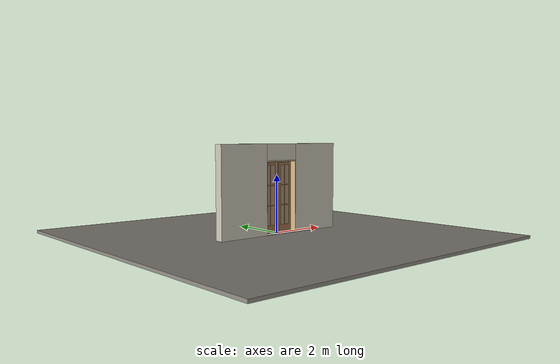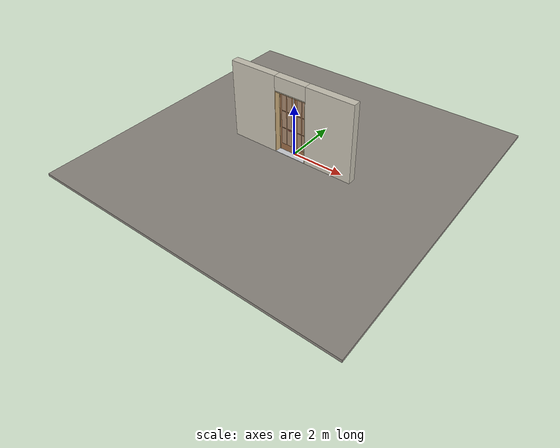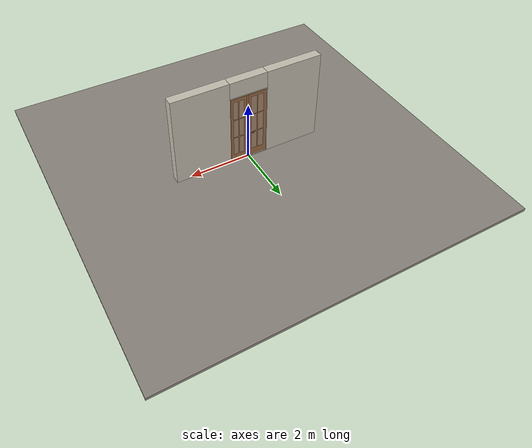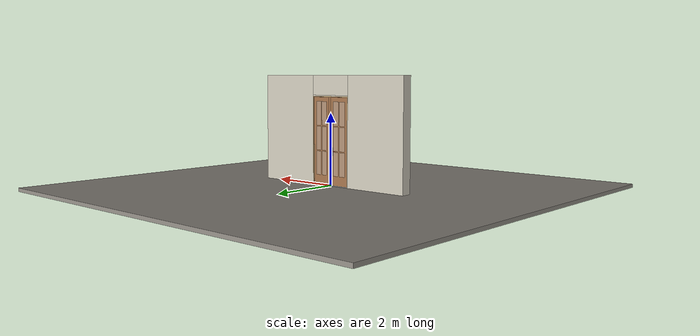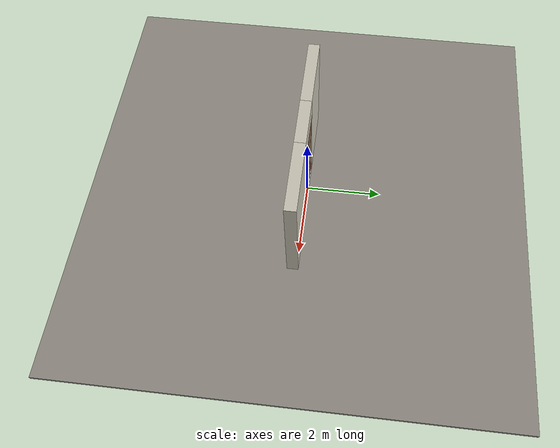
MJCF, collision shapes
<?xml version="1.0" ?>
<mujoco model="db0733_swing_double_full">
  <compiler angle="radian" meshdir="../../hardware" texturedir="../../textures" autolimits="true" inertiafromgeom="false"/>
  <option timestep="0.002" integrator="implicitfast" cone="elliptic" impratio="10" noslip_iterations="3">
    <flag multiccd="enable"/>
  </option>
  <size memory="16M"/>
  <default>
    <geom condim="4" solref="0.005 1" solimp="0.95 0.99 0.001"/>
    <joint solreflimit="0.005 1" solimplimit="0.95 0.99 0.001"/>
    <tendon solreflimit="0.005 1"/>
    <equality solref="0.002 1"/>
  </default>
  <visual>
    <headlight ambient="0.4 0.4 0.4" diffuse="0.7 0.7 0.7" specular="0.2 0.2 0.2"/>
    <quality shadowsize="4096"/>
    <map znear="0.01" zfar="60"/>
  </visual>
  <asset>
    <mesh name="cyl_face_e9e5036966" file="cyl_face_e9e5036966.obj"/>
    <mesh name="hinge_e22b26c0c1" file="hinge_e22b26c0c1.obj"/>
    <mesh name="hinge_jamb_e1d088f8dc" file="hinge_jamb_e1d088f8dc.obj"/>
    <mesh name="lever_f913fc5b7b" file="lever_f913fc5b7b.obj"/>
    <material name="mat_floor" rgba="0.55 0.53 0.5 1" specular="0.2" shininess="0.15" reflectance="0"/>
    <material name="mat_wall" rgba="0.78 0.76 0.7 1" specular="0.2" shininess="0.1" reflectance="0"/>
    <material name="mat_leaf_a" rgba="0.608 0.423 0.277 1" specular="0.2" shininess="0.45" reflectance="0"/>
    <material name="mat_glass" rgba="0.85 0.92 0.95 0.25" specular="0.2" shininess="0.95" reflectance="0.1"/>
    <material name="mat_hinge" rgba="0.65 0.66 0.68 1" specular="0.74" shininess="0.5" reflectance="0.36"/>
    <material name="mat_op_stainless" rgba="0.75 0.76 0.77 1" specular="0.8" shininess="0.65" reflectance="0.4"/>
    <material name="mat_trim" rgba="0.85 0.66 0.3 1" specular="0.8" shininess="0.75" reflectance="0.4"/>
    <material name="mat_bolt" rgba="0.85 0.66 0.3 1" specular="0.8" shininess="0.75" reflectance="0.4"/>
    <material name="mat_deadbolt" rgba="0.85 0.66 0.3 1" specular="0.8" shininess="0.75" reflectance="0.4"/>
    <material name="mat_leaf_b" rgba="0.608 0.423 0.277 1" specular="0.2" shininess="0.45" reflectance="0"/>
    <material name="mat_frame" rgba="0.82 0.7 0.5 1" specular="0.2" shininess="0.45" reflectance="0"/>
    <material name="mat_threshold" rgba="0.8 0.81 0.83 1" specular="0.8" shininess="0.6" reflectance="0.4"/>
    <material name="mat_astragal" rgba="0.8 0.81 0.83 1" specular="0.8" shininess="0.6" reflectance="0.4"/>
    <texture name="skybox" type="skybox" builtin="gradient" rgb1="0.6 0.7 0.85" rgb2="0.9 0.92 0.95" width="256" height="256"/>
  </asset>
  <worldbody>
    <light name="sun" pos="1.5 -2.5 4" dir="-0.3 0.5 -0.8" directional="true" diffuse="0.8 0.8 0.8" specular="0.3 0.3 0.3" castshadow="true"/>
    <light name="fill" pos="-1.5 2.5 3" dir="0.3 -0.5 -0.7" directional="true" diffuse="0.35 0.35 0.4" castshadow="false"/>
    <camera name="robot_view" pos="0 -3.030813 2.043887" xyaxes="1 0 0 0 0.26963 0.962964" fovy="52"/>
    <camera name="far_view" pos="0 2.814812 2.043887" xyaxes="-1 0 0 0 -0.26963 0.962964" fovy="52"/>
    <camera name="iso" pos="-2.221337 -2.563163 2.511538" xyaxes="0.741536 -0.670913 0 0.242917 0.268487 0.932151" fovy="46"/>
    <camera name="detail_handle" pos="0.0045 -0.877 1.245" xyaxes="0.97561 0.219512 0 -0.070934 0.315262 0.94635" fovy="38"/>
    <geom name="floor" type="box" size="6 6 0.05" pos="0 0 -0.05" material="mat_floor" group="0" contype="1" conaffinity="1" friction="0.8 0.005 0.0001" density="2400"/>
    <geom name="wall_left" type="box" size="0.93325 0.15 1.5255" pos="-1.56675 -0.108 1.5255" material="mat_wall" group="0" contype="1" conaffinity="1" friction="0.6 0.005 0.0001" density="800"/>
    <geom name="wall_right" type="box" size="0.93325 0.15 1.5255" pos="1.56675 -0.108 1.5255" material="mat_wall" group="0" contype="1" conaffinity="1" friction="0.6 0.005 0.0001" density="800"/>
    <geom name="wall_header" type="box" size="0.6335 0.15 0.2755" pos="0 -0.108 2.7755" material="mat_wall" group="0" contype="1" conaffinity="1" friction="0.6 0.005 0.0001" density="800"/>
    <geom name="hinge_0_jamb" type="mesh" mesh="hinge_jamb_e1d088f8dc" pos="-0.6115 0.029 0.267" quat="0 1 0 0" material="mat_hinge" group="1" contype="0" conaffinity="0" density="7850"/>
    <geom name="hinge_1_jamb" type="mesh" mesh="hinge_jamb_e1d088f8dc" pos="-0.6115 0.029 0.933667" quat="0 1 0 0" material="mat_hinge" group="1" contype="0" conaffinity="0" density="7850"/>
    <geom name="hinge_2_jamb" type="mesh" mesh="hinge_jamb_e1d088f8dc" pos="-0.6115 0.029 1.600333" quat="0 1 0 0" material="mat_hinge" group="1" contype="0" conaffinity="0" density="7850"/>
    <geom name="hinge_3_jamb" type="mesh" mesh="hinge_jamb_e1d088f8dc" pos="-0.6115 0.029 2.267" quat="0 1 0 0" material="mat_hinge" group="1" contype="0" conaffinity="0" density="7850"/>
    <geom name="hinge_0_jamb_2" type="mesh" mesh="hinge_jamb_e1d088f8dc" pos="0.6115 0.029 0.267" quat="0 0 0 1" material="mat_hinge" group="1" contype="0" conaffinity="0" density="7850"/>
    <geom name="hinge_1_jamb_2" type="mesh" mesh="hinge_jamb_e1d088f8dc" pos="0.6115 0.029 0.933667" quat="0 0 0 1" material="mat_hinge" group="1" contype="0" conaffinity="0" density="7850"/>
    <geom name="hinge_2_jamb_2" type="mesh" mesh="hinge_jamb_e1d088f8dc" pos="0.6115 0.029 1.600333" quat="0 0 0 1" material="mat_hinge" group="1" contype="0" conaffinity="0" density="7850"/>
    <geom name="hinge_3_jamb_2" type="mesh" mesh="hinge_jamb_e1d088f8dc" pos="0.6115 0.029 2.267" quat="0 0 0 1" material="mat_hinge" group="1" contype="0" conaffinity="0" density="7850"/>
    <geom name="jamb_l" type="box" size="0.0095 0.15 1.2255" pos="-0.624 -0.108 1.2255" material="mat_frame" group="0" contype="1" conaffinity="1" friction="0.6 0.005 0.0001" density="300"/>
    <geom name="jamb_r" type="box" size="0.0095 0.15 1.2255" pos="0.624 -0.108 1.2255" material="mat_frame" group="0" contype="1" conaffinity="1" friction="0.6 0.005 0.0001" density="300"/>
    <geom name="jamb_head" type="box" size="0.6335 0.15 0.0095" pos="0 -0.108 2.4605" material="mat_frame" group="0" contype="1" conaffinity="1" friction="0.6 0.005 0.0001" density="300"/>
    <geom name="head_stud" type="box" size="0.6335 0.15 0.015" pos="0 -0.108 2.485" material="mat_wall" group="0" contype="1" conaffinity="1" friction="0.6 0.005 0.0001" density="500"/>
    <geom name="stop_l" type="box" size="0.015 0.006 1.2255" pos="-0.5995 -0.0285 1.2255" material="mat_frame" group="0" contype="1" conaffinity="1" friction="0.6 0.005 0.0001" density="300"/>
    <geom name="stop_r" type="box" size="0.015 0.006 1.2255" pos="0.5995 -0.0285 1.2255" material="mat_frame" group="0" contype="1" conaffinity="1" friction="0.6 0.005 0.0001" density="300"/>
    <geom name="stop_head" type="box" size="0.6145 0.006 0.015" pos="0 -0.0285 2.436" material="mat_frame" group="0" contype="1" conaffinity="1" friction="0.6 0.005 0.0001" density="300"/>
    <geom name="threshold" type="box" size="0.6335 0.15 0.0065" pos="0 -0.108 0.0065" material="mat_threshold" group="0" contype="1" conaffinity="1" friction="0.5 0.005 0.0001" density="2700"/>
    <site name="approach_point" pos="0 -1.5 0" quat="1 0 0 0" size="0.05" rgba="0.2 0.9 0.2 0.5" group="4"/>
    <site name="goal_point" pos="0 1.5 0" quat="1 0 0 0" size="0.05" rgba="0.2 0.9 0.2 0.5" group="4"/>
    <site name="door_plane_center" pos="0 0 1.2255" quat="1 0 0 0" size="0.02" rgba="0.2 0.9 0.2 0.5" group="4"/>
    <site name="approach_point_2" pos="0 -1.5 0" quat="1 0 0 0" size="0.05" rgba="0.2 0.9 0.2 0.5" group="4"/>
    <site name="goal_point_2" pos="0 1.5 0" quat="1 0 0 0" size="0.05" rgba="0.2 0.9 0.2 0.5" group="4"/>
    <site name="door_plane_center_2" pos="0 0 1.2255" quat="1 0 0 0" size="0.02" rgba="0.2 0.9 0.2 0.5" group="4"/>
    <site name="approach_point_3" pos="0 -1.5 0" quat="1 0 0 0" size="0.05" rgba="0.2 0.9 0.2 0.5" group="4"/>
    <site name="goal_point_3" pos="0 1.5 0" quat="1 0 0 0" size="0.05" rgba="0.2 0.9 0.2 0.5" group="4"/>
    <site name="door_plane_center_3" pos="0 0 1.2255" quat="1 0 0 0" size="0.02" rgba="0.2 0.9 0.2 0.5" group="4"/>
    <body name="leaf_a" pos="-0.6145 0 0">
      <inertial pos="0.294716 0.000848 1.230529" mass="29.100711" quat="0.498371 0.503284 0.496648 -0.501669" diaginertia="1.020224363 14.203946756 15.213243006"/>
      <joint name="leaf_a_hinge" type="hinge" axis="0 0 1" pos="0.003 0.029 0" limited="true" range="0 1.570796" damping="0.110964" frictionloss="0.113803" armature="0.02"/>
      <geom name="leaf_a_slab" type="box" size="0.305 0.022 1.215" pos="0.308 0 1.232" material="mat_leaf_a" group="0" contype="1" conaffinity="1" friction="0.35 0.005 0.0001" density="1"/>
      <geom name="leaf_a_glass_0" type="box" size="0.1 0.0228 0.3302" pos="0.193 0 0.6145" material="mat_glass" group="1" contype="0" conaffinity="0" density="1"/>
      <geom name="leaf_a_glass_1" type="box" size="0.1 0.0228 0.3302" pos="0.423 0 0.6145" material="mat_glass" group="1" contype="0" conaffinity="0" density="1"/>
      <geom name="leaf_a_glass_2" type="box" size="0.1 0.0228 0.3302" pos="0.193 0 1.3049" material="mat_glass" group="1" contype="0" conaffinity="0" density="1"/>
      <geom name="leaf_a_glass_3" type="box" size="0.1 0.0228 0.3302" pos="0.423 0 1.3049" material="mat_glass" group="1" contype="0" conaffinity="0" density="1"/>
      <geom name="leaf_a_glass_4" type="box" size="0.1 0.0228 0.3302" pos="0.193 0 1.9953" material="mat_glass" group="1" contype="0" conaffinity="0" density="1"/>
      <geom name="leaf_a_glass_5" type="box" size="0.1 0.0228 0.3302" pos="0.423 0 1.9953" material="mat_glass" group="1" contype="0" conaffinity="0" density="1"/>
      <geom name="hinge_0" type="mesh" mesh="hinge_e22b26c0c1" pos="0.003 0.029 0.267" quat="0 1 0 0" material="mat_hinge" group="1" contype="0" conaffinity="0" density="7850"/>
      <geom name="hinge_1" type="mesh" mesh="hinge_e22b26c0c1" pos="0.003 0.029 0.933667" quat="0 1 0 0" material="mat_hinge" group="1" contype="0" conaffinity="0" density="7850"/>
      <geom name="hinge_2" type="mesh" mesh="hinge_e22b26c0c1" pos="0.003 0.029 1.600333" quat="0 1 0 0" material="mat_hinge" group="1" contype="0" conaffinity="0" density="7850"/>
      <geom name="hinge_3" type="mesh" mesh="hinge_e22b26c0c1" pos="0.003 0.029 2.267" quat="0 1 0 0" material="mat_hinge" group="1" contype="0" conaffinity="0" density="7850"/>
      <geom name="leaf_a_handle_escutcheon_n" type="box" size="0.02 0.0015 0.11" pos="0.543 -0.0235 0.965" material="mat_op_stainless" group="1" contype="0" conaffinity="0" density="3000"/>
      <geom name="leaf_a_handle_escutcheon_p" type="box" size="0.02 0.0015 0.11" pos="0.543 0.0235 0.965" material="mat_op_stainless" group="1" contype="0" conaffinity="0" density="3000"/>
      <geom name="leaf_a_latch_bolt_faceplate" type="box" size="0.0006 0.01235 0.0267" pos="0.6124 0 0.965" material="mat_bolt" group="1" contype="0" conaffinity="0" density="8500"/>
      <geom name="leaf_a_deadbolt_faceplate" type="box" size="0.0006 0.014 0.0245" pos="0.6124 0 1.105" material="mat_deadbolt" group="1" contype="0" conaffinity="0" density="8500"/>
      <geom name="leaf_a_deadbolt_cylinder_face" type="mesh" mesh="cyl_face_e9e5036966" pos="0.548 -0.022 1.105" quat="0.707107 0.707107 0 0" material="mat_deadbolt" group="1" contype="0" conaffinity="0" density="7100"/>
      <site name="leaf_a_edge_mid" pos="0.613 0 1.215" quat="1 0 0 0" size="0.02" rgba="0.2 0.9 0.2 0.5" group="4"/>
      <body name="leaf_a_handle" pos="0.543 0 0.965">
        <inertial pos="-0.038995 0 0" mass="0.772658" quat="0.707107 0 0 -0.707107" diaginertia="0.001545312 0.003473151 0.004979007"/>
        <joint name="leaf_a_handle_hinge" type="hinge" axis="0 -1 0" limited="true" range="0 0.65" damping="0.225568" frictionloss="0.051863" stiffness="1" springref="-0.503022" armature="0.01"/>
        <geom name="leaf_a_handle_spindle" type="cylinder" size="0.006 0.034" pos="0 0 0" quat="0.707107 -0.707107 0 0" material="mat_op_stainless" group="1" contype="0" conaffinity="0" density="7850"/>
        <geom name="leaf_a_handle_lever_n" type="mesh" mesh="lever_f913fc5b7b" pos="0 -0.022 0" quat="0.707107 0.707107 0 0" material="mat_op_stainless" group="1" contype="0" conaffinity="0" density="3000"/>
        <geom name="leaf_a_handle_lever_col_n" type="capsule" size="0.0095 0.0555" pos="-0.065 -0.077 0" quat="0.707107 0 -0.707107 0" material="mat_op_stainless" group="3" contype="1" conaffinity="1" rgba="0.8 0.3 0.3 0.25" friction="0.7 0.01 0.0001" density="3000"/>
        <geom name="leaf_a_handle_hub_col_n" type="cylinder" size="0.012 0.022" pos="0 -0.052 0" quat="0.707107 -0.707107 0 0" material="mat_op_stainless" group="3" contype="1" conaffinity="1" rgba="0.8 0.3 0.3 0.25" friction="0.6 0.005 0.0001" density="3000"/>
        <geom name="leaf_a_handle_lever_p" type="mesh" mesh="lever_f913fc5b7b" pos="0 0.022 0" quat="-0.707107 0.707107 0 0" material="mat_op_stainless" group="1" contype="0" conaffinity="0" density="3000"/>
        <geom name="leaf_a_handle_lever_col_p" type="capsule" size="0.0095 0.0555" pos="-0.065 0.077 0" quat="0.707107 0 -0.707107 0" material="mat_op_stainless" group="3" contype="1" conaffinity="1" rgba="0.8 0.3 0.3 0.25" friction="0.7 0.01 0.0001" density="3000"/>
        <geom name="leaf_a_handle_hub_col_p" type="cylinder" size="0.012 0.022" pos="0 0.052 0" quat="0.707107 -0.707107 0 0" material="mat_op_stainless" group="3" contype="1" conaffinity="1" rgba="0.8 0.3 0.3 0.25" friction="0.6 0.005 0.0001" density="3000"/>
        <site name="leaf_a_handle_grip_n" pos="-0.104 -0.077 0" quat="1 0 0 0" size="0.012" rgba="0.2 0.9 0.2 0.5" group="4"/>
        <site name="leaf_a_handle_grip_p" pos="-0.104 0.077 0" quat="1 0 0 0" size="0.012" rgba="0.2 0.9 0.2 0.5" group="4"/>
      </body>
      <body name="leaf_a_latch_bolt" pos="0.613 0 0.965">
        <inertial pos="-0.00865 0 0" mass="0.041419" quat="0.92388 -0.382683 0 0" diaginertia="0.000000798 0.000005598 0.000005598"/>
        <joint name="leaf_a_latch_bolt_slide" type="slide" axis="-1 0 0" limited="true" range="0 0.0127" damping="2" frictionloss="0.3" stiffness="300" springref="-0.008333" armature="0.1"/>
        <geom name="leaf_a_latch_bolt_capsule" type="capsule" size="0.00635 0.015" pos="-0.00865 0 0" quat="0.707107 0 0.707107 0" material="mat_bolt" group="0" contype="1" conaffinity="1" friction="0.2 0.005 0.0001" density="8500"/>
      </body>
      <body name="leaf_a_deadbolt" pos="0.613 0 1.105">
        <inertial pos="-0.0023 0 0" mass="0.18836" quat="0 0 0.707107 0.707107" diaginertia="0.000013829 0.000052194 0.000057986"/>
        <geom name="leaf_a_deadbolt_box" type="box" size="0.0277 0.008 0.0125" pos="-0.0023 0 0" material="mat_deadbolt" group="0" contype="1" conaffinity="1" friction="0.3 0.005 0.0001" density="8500"/>
      </body>
    </body>
    <body name="leaf_b" pos="0.6145 0 0">
      <inertial pos="-0.333203 -0.005178 1.231133" mass="27.979391" quat="0.488918 0.512239 -0.48741 0.510884" diaginertia="1.198620496 13.782877289 14.969601343"/>
      <joint name="leaf_b_hinge" type="hinge" axis="0 0 -1" pos="-0.003 0.029 0" limited="true" range="0 0.001" damping="0.110964" frictionloss="0.113803" armature="0.02"/>
      <geom name="leaf_b_edge_965_wall_n" type="box" size="0.03 0.007075 0.0167" pos="-0.583 -0.014925 0.965" material="mat_leaf_b" group="0" contype="1" conaffinity="1" friction="0.6 0.005 0.0001" density="1"/>
      <geom name="leaf_b_edge_965_wall_p" type="box" size="0.03 0.008 0.0167" pos="-0.583 0.01585 0.965" material="mat_leaf_b" group="0" contype="1" conaffinity="1" friction="0.6 0.005 0.0001" density="1"/>
      <geom name="leaf_b_edge_965_ramp" type="box" size="0.03 0.01649 0.0167" pos="-0.578861 0.026388 0.965" quat="0.977148 0 0 -0.212558" material="mat_leaf_b" group="0" contype="1" conaffinity="1" friction="0.12 0.005 0.0001" density="1"/>
      <geom name="leaf_b_edge_965_back" type="box" size="0.02165 0.00785 0.0167" pos="-0.57465 0 0.965" material="mat_leaf_b" group="0" contype="1" conaffinity="1" friction="0.6 0.005 0.0001" density="1"/>
      <geom name="leaf_b_edge_1105_wall_n" type="box" size="0.03 0.00625 0.0155" pos="-0.583 -0.01575 1.105" material="mat_leaf_b" group="0" contype="1" conaffinity="1" friction="0.6 0.005 0.0001" density="1"/>
      <geom name="leaf_b_edge_1105_wall_p" type="box" size="0.03 0.00625 0.0155" pos="-0.583 0.01575 1.105" material="mat_leaf_b" group="0" contype="1" conaffinity="1" friction="0.6 0.005 0.0001" density="1"/>
      <geom name="leaf_b_edge_1105_back" type="box" size="0.0153 0.0095 0.0155" pos="-0.5683 0 1.105" material="mat_leaf_b" group="0" contype="1" conaffinity="1" friction="0.6 0.005 0.0001" density="1"/>
      <geom name="leaf_b_edge_seg_0" type="box" size="0.03 0.022 0.46565" pos="-0.583 0 0.48265" material="mat_leaf_b" group="0" contype="1" conaffinity="1" friction="0.6 0.005 0.0001" density="1"/>
      <geom name="leaf_b_edge_seg_1" type="box" size="0.03 0.022 0.0539" pos="-0.583 0 1.0356" material="mat_leaf_b" group="0" contype="1" conaffinity="1" friction="0.6 0.005 0.0001" density="1"/>
      <geom name="leaf_b_edge_seg_2" type="box" size="0.03 0.022 0.66325" pos="-0.583 0 1.78375" material="mat_leaf_b" group="0" contype="1" conaffinity="1" friction="0.6 0.005 0.0001" density="1"/>
      <geom name="leaf_b_slab" type="box" size="0.275 0.022 1.215" pos="-0.278 0 1.232" material="mat_leaf_b" group="0" contype="1" conaffinity="1" friction="0.35 0.005 0.0001" density="1"/>
      <geom name="leaf_b_glass_0" type="box" size="0.085 0.0228 0.3302" pos="-0.178 0 0.6145" material="mat_glass" group="1" contype="0" conaffinity="0" density="1"/>
      <geom name="leaf_b_glass_1" type="box" size="0.085 0.0228 0.3302" pos="-0.378 0 0.6145" material="mat_glass" group="1" contype="0" conaffinity="0" density="1"/>
      <geom name="leaf_b_glass_2" type="box" size="0.085 0.0228 0.3302" pos="-0.178 0 1.3049" material="mat_glass" group="1" contype="0" conaffinity="0" density="1"/>
      <geom name="leaf_b_glass_3" type="box" size="0.085 0.0228 0.3302" pos="-0.378 0 1.3049" material="mat_glass" group="1" contype="0" conaffinity="0" density="1"/>
      <geom name="leaf_b_glass_4" type="box" size="0.085 0.0228 0.3302" pos="-0.178 0 1.9953" material="mat_glass" group="1" contype="0" conaffinity="0" density="1"/>
      <geom name="leaf_b_glass_5" type="box" size="0.085 0.0228 0.3302" pos="-0.378 0 1.9953" material="mat_glass" group="1" contype="0" conaffinity="0" density="1"/>
      <geom name="hinge_0_2" type="mesh" mesh="hinge_e22b26c0c1" pos="-0.003 0.029 0.267" quat="0 0 0 1" material="mat_hinge" group="1" contype="0" conaffinity="0" density="7850"/>
      <geom name="hinge_1_2" type="mesh" mesh="hinge_e22b26c0c1" pos="-0.003 0.029 0.933667" quat="0 0 0 1" material="mat_hinge" group="1" contype="0" conaffinity="0" density="7850"/>
      <geom name="hinge_2_2" type="mesh" mesh="hinge_e22b26c0c1" pos="-0.003 0.029 1.600333" quat="0 0 0 1" material="mat_hinge" group="1" contype="0" conaffinity="0" density="7850"/>
      <geom name="hinge_3_2" type="mesh" mesh="hinge_e22b26c0c1" pos="-0.003 0.029 2.267" quat="0 0 0 1" material="mat_hinge" group="1" contype="0" conaffinity="0" density="7850"/>
      <geom name="astragal" type="box" size="0.02 0.008 1.199" pos="-0.617 -0.03 1.219" material="mat_astragal" group="0" contype="1" conaffinity="1" friction="0.6 0.005 0.0001" density="2700"/>
      <site name="leaf_b_edge_mid" pos="-0.613 0 1.215" quat="1 0 0 0" size="0.02" rgba="0.2 0.9 0.2 0.5" group="4"/>
    </body>
  </worldbody>
  <tendon>
    <fixed name="leaf_a_latch_bolt_coupling" limited="true" range="0 10">
      <joint joint="leaf_a_latch_bolt_slide" coef="1"/>
      <joint joint="leaf_a_handle_hinge" coef="-0.02082"/>
    </fixed>
  </tendon>
  <sensor>
    <jointpos name="leaf_a_hinge_pos" joint="leaf_a_hinge"/>
    <jointvel name="leaf_a_hinge_vel" joint="leaf_a_hinge"/>
    <jointpos name="leaf_a_handle_hinge_pos" joint="leaf_a_handle_hinge"/>
    <jointvel name="leaf_a_handle_hinge_vel" joint="leaf_a_handle_hinge"/>
    <jointpos name="leaf_a_latch_bolt_slide_pos" joint="leaf_a_latch_bolt_slide"/>
    <jointvel name="leaf_a_latch_bolt_slide_vel" joint="leaf_a_latch_bolt_slide"/>
    <jointpos name="leaf_b_hinge_pos" joint="leaf_b_hinge"/>
    <jointvel name="leaf_b_hinge_vel" joint="leaf_b_hinge"/>
  </sensor>
</mujoco>
